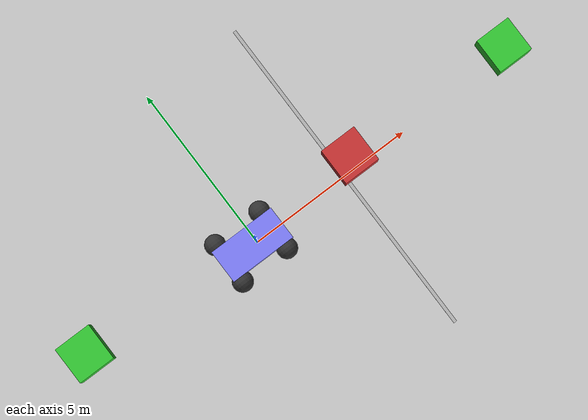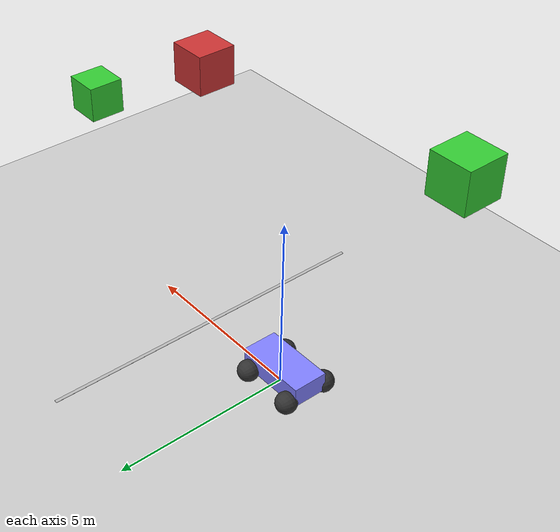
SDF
<?xml version="1.0" ?>
<sdf version="1.6">
  <world name="triggered_publisher">

    <physics name="1ms" type="ignored">
      <max_step_size>0.001</max_step_size>
      <real_time_factor>1.0</real_time_factor>
    </physics>
    <plugin
      filename="ignition-gazebo-physics-system"
      name="ignition::gazebo::systems::Physics">
    </plugin>
    <plugin
      filename="ignition-gazebo-contact-system"
      name="ignition::gazebo::systems::Contact">
    </plugin>
    <plugin
      filename="ignition-gazebo-user-commands-system"
      name="ignition::gazebo::systems::UserCommands">
    </plugin>
    <plugin
      filename="ignition-gazebo-scene-broadcaster-system"
      name="ignition::gazebo::systems::SceneBroadcaster">
    </plugin>
    <plugin
      filename="ignition-gazebo-altimeter-system"
      name="ignition::gazebo::systems::Altimeter">
    </plugin>

    <light type="directional" name="sun">
      <cast_shadows>true</cast_shadows>
      <pose>0 0 10 0 0 0</pose>
      <diffuse>1 1 1 1</diffuse>
      <specular>0.5 0.5 0.5 1</specular>
      <attenuation>
        <range>1000</range>
        <constant>0.9</constant>
        <linear>0.01</linear>
        <quadratic>0.001</quadratic>
      </attenuation>
      <direction>0.05 -0.1 -0.9</direction>
    </light>

    <model name="ground_plane">
      <static>true</static>
      <link name="link">
        <collision name="collision">
          <geometry>
            <plane>
              <normal>0 0 1</normal>
              <size>100 100</size>
            </plane>
          </geometry>
        </collision>
        <visual name="visual">
          <geometry>
            <plane>
              <normal>0 0 1</normal>
              <size>100 100</size>
            </plane>
          </geometry>
          <material>
            <ambient>0.8 0.8 0.8 1</ambient>
            <diffuse>0.8 0.8 0.8 1</diffuse>
            <specular>0.8 0.8 0.8 1</specular>
          </material>
        </visual>
      </link>
    </model>

    <model name='vehicle_blue'>
      <pose>0 0 0.325 0 -0 0</pose>

      <link name='chassis'>
        <pose>-0.151427 -0 0.175 0 -0 0</pose>
        <inertial>
          <mass>1.14395</mass>
          <inertia>
            <ixx>0.126164</ixx>
            <ixy>0</ixy>
            <ixz>0</ixz>
            <iyy>0.416519</iyy>
            <iyz>0</iyz>
            <izz>0.481014</izz>
          </inertia>
        </inertial>
        <visual name='visual'>
          <geometry>
            <box>
              <size>2.01142 1 0.568726</size>
            </box>
          </geometry>
          <material>
            <ambient>0.5 0.5 1.0 1</ambient>
            <diffuse>0.5 0.5 1.0 1</diffuse>
            <specular>0.0 0.0 1.0 1</specular>
          </material>
        </visual>
        <collision name='collision'>
          <geometry>
            <box>
              <size>2.01142 1 0.568726</size>
            </box>
          </geometry>
        </collision>
      </link>

      <link name='front_left_wheel'>
        <pose>0.554283 0.625029 -0.025 -1.5707 0 0</pose>
        <inertial>
          <mass>2</mass>
          <inertia>
            <ixx>0.145833</ixx>
            <ixy>0</ixy>
            <ixz>0</ixz>
            <iyy>0.145833</iyy>
            <iyz>0</iyz>
            <izz>0.125</izz>
          </inertia>
        </inertial>
        <visual name='visual'>
          <geometry>
            <sphere>
              <radius>0.3</radius>
            </sphere>
          </geometry>
          <material>
            <ambient>0.2 0.2 0.2 1</ambient>
            <diffuse>0.2 0.2 0.2 1</diffuse>
            <specular>0.2 0.2 0.2 1</specular>
          </material>
        </visual>
        <collision name='collision'>
          <geometry>
            <sphere>
              <radius>0.3</radius>
            </sphere>
          </geometry>
          <surface>
            <friction>
              <ode>
                <mu>1</mu>
                <mu2>1</mu2>
                <slip1>0.035</slip1>
                <slip2>0</slip2>
                <fdir1>0 0 1</fdir1>
              </ode>
            </friction>
          </surface>
        </collision>
      </link>

      <link name='rear_left_wheel'>
        <pose>-0.957138 0.625029 -0.025 -1.5707 0 0</pose>
        <inertial>
          <mass>2</mass>
          <inertia>
            <ixx>0.145833</ixx>
            <ixy>0</ixy>
            <ixz>0</ixz>
            <iyy>0.145833</iyy>
            <iyz>0</iyz>
            <izz>0.125</izz>
          </inertia>
        </inertial>
        <visual name='visual'>
          <geometry>
            <sphere>
              <radius>0.3</radius>
            </sphere>
          </geometry>
          <material>
            <ambient>0.2 0.2 0.2 1</ambient>
            <diffuse>0.2 0.2 0.2 1</diffuse>
            <specular>0.2 0.2 0.2 1</specular>
          </material>
        </visual>
        <collision name='collision'>
          <geometry>
            <sphere>
              <radius>0.3</radius>
            </sphere>
          </geometry>
          <surface>
            <friction>
              <ode>
                <mu>1</mu>
                <mu2>1</mu2>
                <slip1>0.035</slip1>
                <slip2>0</slip2>
                <fdir1>0 0 1</fdir1>
              </ode>
            </friction>
          </surface>
        </collision>
      </link>

      <link name='front_right_wheel'>
        <pose>0.554282 -0.625029 -0.025 -1.5707 0 0</pose>
        <inertial>
          <mass>2</mass>
          <inertia>
            <ixx>0.145833</ixx>
            <ixy>0</ixy>
            <ixz>0</ixz>
            <iyy>0.145833</iyy>
            <iyz>0</iyz>
            <izz>0.125</izz>
          </inertia>
        </inertial>
        <visual name='visual'>
          <geometry>
            <sphere>
              <radius>0.3</radius>
            </sphere>
          </geometry>
          <material>
            <ambient>0.2 0.2 0.2 1</ambient>
            <diffuse>0.2 0.2 0.2 1</diffuse>
            <specular>0.2 0.2 0.2 1</specular>
          </material>
        </visual>
        <collision name='collision'>
          <geometry>
            <sphere>
              <radius>0.3</radius>
            </sphere>
          </geometry>
          <surface>
            <friction>
              <ode>
                <mu>1</mu>
                <mu2>1</mu2>
                <slip1>0.035</slip1>
                <slip2>0</slip2>
                <fdir1>0 0 1</fdir1>
              </ode>
            </friction>
          </surface>
        </collision>
      </link>

      <link name='rear_right_wheel'>
        <pose>-0.957138 -0.625029 -0.025 -1.5707 0 0</pose>
        <inertial>
          <mass>2</mass>
          <inertia>
            <ixx>0.145833</ixx>
            <ixy>0</ixy>
            <ixz>0</ixz>
            <iyy>0.145833</iyy>
            <iyz>0</iyz>
            <izz>0.125</izz>
          </inertia>
        </inertial>
        <visual name='visual'>
          <geometry>
            <sphere>
              <radius>0.3</radius>
            </sphere>
          </geometry>
          <material>
            <ambient>0.2 0.2 0.2 1</ambient>
            <diffuse>0.2 0.2 0.2 1</diffuse>
            <specular>0.2 0.2 0.2 1</specular>
          </material>
        </visual>
        <collision name='collision'>
          <geometry>
            <sphere>
              <radius>0.3</radius>
            </sphere>
          </geometry>
          <surface>
            <friction>
              <ode>
                <mu>1</mu>
                <mu2>1</mu2>
                <slip1>0.035</slip1>
                <slip2>0</slip2>
                <fdir1>0 0 1</fdir1>
              </ode>
            </friction>
          </surface>
        </collision>
      </link>

      <joint name='front_left_wheel_joint' type='revolute'>
        <parent>chassis</parent>
        <child>front_left_wheel</child>
        <axis>
          <xyz>0 0 1</xyz>
          <limit>
            <lower>-1.79769e+308</lower>
            <upper>1.79769e+308</upper>
          </limit>
        </axis>
      </joint>

      <joint name='front_right_wheel_joint' type='revolute'>
        <parent>chassis</parent>
        <child>front_right_wheel</child>
        <axis>
          <xyz>0 0 1</xyz>
          <limit>
            <lower>-1.79769e+308</lower>
            <upper>1.79769e+308</upper>
          </limit>
        </axis>
      </joint>

      <joint name='rear_left_wheel_joint' type='revolute'>
        <parent>chassis</parent>
        <child>rear_left_wheel</child>
        <axis>
          <xyz>0 0 1</xyz>
          <limit>
            <lower>-1.79769e+308</lower>
            <upper>1.79769e+308</upper>
          </limit>
        </axis>
      </joint>

      <joint name='rear_right_wheel_joint' type='revolute'>
        <parent>chassis</parent>
        <child>rear_right_wheel</child>
        <axis>
          <xyz>0 0 1</xyz>
          <limit>
            <lower>-1.79769e+308</lower>
            <upper>1.79769e+308</upper>
          </limit>
        </axis>
      </joint>

      <plugin
        filename="ignition-gazebo-diff-drive-system"
        name="ignition::gazebo::systems::DiffDrive">
        <left_joint>front_left_wheel_joint</left_joint>
        <left_joint>rear_left_wheel_joint</left_joint>
        <right_joint>front_right_wheel_joint</right_joint>
        <right_joint>rear_right_wheel_joint</right_joint>
        <wheel_separation>1.25</wheel_separation>
        <wheel_radius>0.3</wheel_radius>
        <topic>cmd_vel</topic>
      </plugin>
    </model>

    <model name="trigger">
      <pose>3 0 0 0 0 0</pose>
      <static>true</static>
      <link name="body">
        <visual name="v1">
          <geometry>
            <box><size>0.1 10 0.01</size></box>
          </geometry>
        </visual>
        <collision name="c1">
          <geometry>
            <box><size>0.1 10 0.01</size></box>
          </geometry>
        </collision>
        <sensor name='sensor_contact' type='contact'>
          <contact>
            <collision>c1</collision>
          </contact>
        </sensor>
      </link>
      <plugin
        filename="ignition-gazebo-touchplugin-system"
        name="ignition::gazebo::systems::TouchPlugin">
        <target>vehicle_blue</target>
        <namespace>trigger</namespace>
        <time>0.001</time>
        <enabled>true</enabled>
      </plugin>
      <plugin filename="ignition-gazebo-detachable-joint-system"
        name="ignition::gazebo::systems::DetachableJoint">
        <parent_link>body</parent_link>
        <child_model>box1</child_model>
        <child_link>box_body</child_link>
        <detach_topic>/box1/detach</detach_topic>
      </plugin>
      <plugin filename="ignition-gazebo-detachable-joint-system"
        name="ignition::gazebo::systems::DetachableJoint">
        <parent_link>body</parent_link>
        <child_model>box2</child_model>
        <child_link>box_body</child_link>
        <detach_topic>/box2/detach</detach_topic>
      </plugin>
    </model>

    <model name="box1">
      <pose>3 0 8 0 0 0</pose>
      <link name="box_body">
        <visual name="v1">
          <geometry>
            <box><size>1 1 1</size></box>
          </geometry>
          <material>
            <diffuse>0.8 0.2 0.2 1</diffuse>
            <specular>1.0 0 0 1</specular>
          </material>
        </visual>
        <collision name="c1">
          <geometry>
            <box><size>1 1 1</size></box>
          </geometry>
        </collision>

        <sensor name="altimeter_sensor" type="altimeter">
          <topic>/altimeter</topic>
          <always_on>1</always_on>
          <update_rate>30</update_rate>
          <visualize>true</visualize>
        </sensor>
      </link>
    </model>

    <model name="box2">
      <pose>8 0 5 0 0 0</pose>
      <link name="box_body">
        <visual name="v1">
          <geometry>
            <box><size>1 1 1</size></box>
          </geometry>
          <material>
            <diffuse>0.2 0.8 0.2 1</diffuse>
            <specular>1.0 0 0 1</specular>
          </material>
        </visual>
        <collision name="c1">
          <geometry>
            <box><size>1 1 1</size></box>
          </geometry>
        </collision>
      </link>
    </model>

    <model name="box3">
      <pose>-5 0 9 0 0 0</pose>
      <link name="box_body">
        <visual name="v1">
          <geometry>
            <box><size>1 1 1</size></box>
          </geometry>
          <material>
            <diffuse>0.2 0.8 0.2 1</diffuse>
            <specular>1.0 0 0 1</specular>
          </material>
        </visual>
        <collision name="c1">
          <geometry>
            <box><size>1 1 1</size></box>
          </geometry>
        </collision>
      </link>
    </model>

    <plugin filename="ignition-gazebo-triggered-publisher-system" name="ignition::gazebo::systems::TriggeredPublisher">
      <input type="ignition.msgs.Empty" topic="/start"/>
      <output type="ignition.msgs.Twist" topic="/cmd_vel">
          linear: {x: 3}
      </output>
    </plugin>

    <plugin filename="ignition-gazebo-triggered-publisher-system" name="ignition::gazebo::systems::TriggeredPublisher">
      <input type="ignition.msgs.Empty" topic="/liam-test"/>
      <output type="ignition.msgs.Twist" topic="/cmd_vel">
          linear: {x: 0}
      </output>
      <service name="/world/triggered_publisher/set_pose" reqType="ignition.msgs.Pose" repType="ignition.msgs.Boolean" timeout="3000" reqMsg="name: 'blue_vehicle', id:8, position: {x:-3, z:1}"></service>
      <service name="/world/triggered_publisher/set_pose" reqType="ignition.msgs.Pose" repType="ignition.msgs.Boolean" reqMsg="name: 'box1', id:42, position: {x:-6,y:1 z:13}"></service>
    </plugin>

    <plugin filename="ignition-gazebo-triggered-publisher-system" name="ignition::gazebo::systems::TriggeredPublisher">
      <input type="ignition.msgs.Boolean" topic="/trigger/touched">
        <match>data: true</match>
      </input>
      <output type="ignition.msgs.Empty" topic="/box1/detach"/>
    </plugin>

    <plugin filename="ignition-gazebo-triggered-publisher-system" name="ignition::gazebo::systems::TriggeredPublisher">
      <input type="ignition.msgs.Altimeter" topic="/altimeter">
        <match field="vertical_position" tol="0.2">-7.5</match>
      </input>
      <delay_ms>5000</delay_ms>
      <output type="ignition.msgs.Empty" topic="/box2/detach"/>
    </plugin>
</world>
</sdf>
